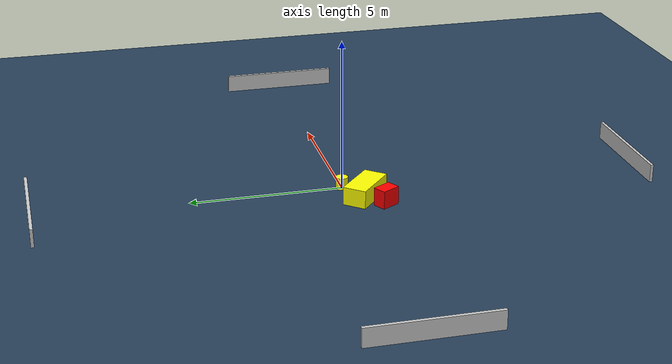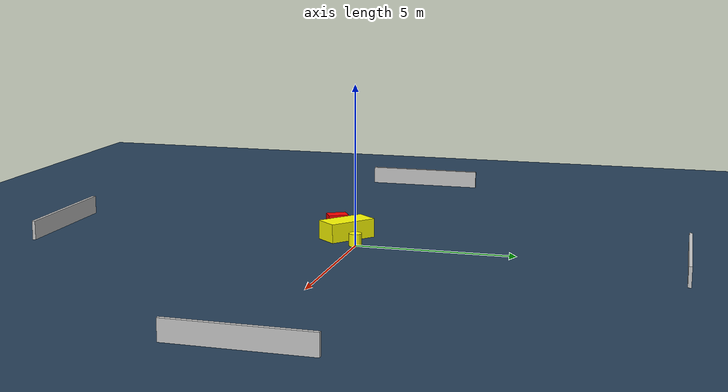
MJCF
<?xml version="1.0" ?>
<mujoco model="generated_environment">
  <option timestep="0.01" integrator="RK4" cone="elliptic"/>
  <default>
    <geom density="1"/>
  </default>
  <asset>
    <texture builtin="gradient" height="3072" name="skybox" rgb1="0.3 0.5 0.7" rgb2="0 0 0" type="skybox" width="512"/>
    <texture builtin="checker" height="300" name="groundplane" rgb1="0.2 0.3 0.4" rgb2="0.1 0.2 0.3" type="2d" width="300"/>
    <material name="groundplane" reflectance="0.2" texrepeat="5 5" texture="groundplane"/>
  </asset>
  <worldbody>
    <light dir="0 0 -1" directional="true" pos="0 0 1.5"/>
    <geom condim="3" friction="0.5 0.005 0.001" material="groundplane" name="floor" pos="0 0 0" size="0 0 0.05" type="plane"/>
    <body name="walls">
      <geom name="wall_1" condim="4" pos="-10.0 0.0 0.3" rgba="0.800000011920929 0.800000011920929 0.800000011920929 1.0" size="0.05 2.0 0.3" type="box"/>
      <geom name="wall_2" condim="4" pos="10.0 0.0 0.3" rgba="0.800000011920929 0.800000011920929 0.800000011920929 1.0" size="0.05 2.0 0.3" type="box"/>
      <geom name="wall_3" condim="4" pos="0.0 -10.0 0.3" rgba="0.800000011920929 0.800000011920929 0.800000011920929 1.0" size="2.0 0.05 0.3" type="box"/>
      <geom name="wall_4" condim="4" pos="0.0 10.0 0.3" rgba="0.800000011920929 0.800000011920929 0.800000011920929 1.0" size="2.0 0.05 0.3" type="box"/>
    </body>
    <body name="robot">
      <joint name="joint_x" type="slide" pos="0 0 0" axis="1 0 0"/>
      <joint name="joint_y" type="slide" pos="0 0 0" axis="0 1 0"/>
      <geom name="robot" type="cylinder" pos="0.0 0.0 0.2" size="0.2 0.2 0.0" mass="5.0" friction="1.0 0.005 0.0001" condim="4" rgba="1.0 1.0 0.0 1.0"/>
    </body>
    <body name="obstacle_1_movable">
      <geom name="obstacle_1_movable" condim="4" pos="-0.9233339485331212 -0.5384407220376715 0.3" euler="0 0 229.20492599169395" friction="0.0 0.005 0.001" rgba="1.0 1.0 0.0 1.0" size="0.39083790945208385 0.7926111575847519 0.3" type="box" mass="0.1"/>
      <joint type="free"/>
    </body>
    <body name="obstacle_2_static">
      <geom name="obstacle_2_static" condim="4" pos="-1.5920662492812254 -1.0541638806439753 0.3" euler="0 0 300.347060400623" friction="0.0 0.005 0.001" rgba="1.0 0.0 0.0 1.0" size="0.3229894307435567 0.2263411289472316 0.3" type="box"/>
    </body>
  </worldbody>
  <actuator>
    <motor name="actuator_x" joint="joint_x" gear="1" ctrlrange="-1 1"/>
    <motor name="actuator_y" joint="joint_y" gear="1" ctrlrange="-1 1"/>
  </actuator>
</mujoco>
